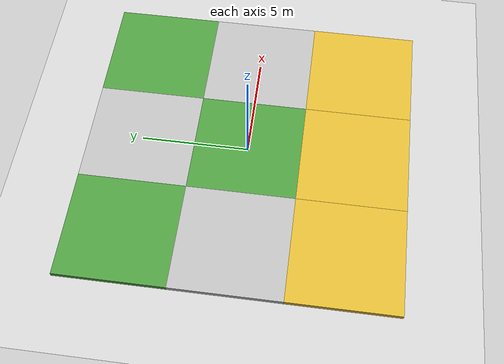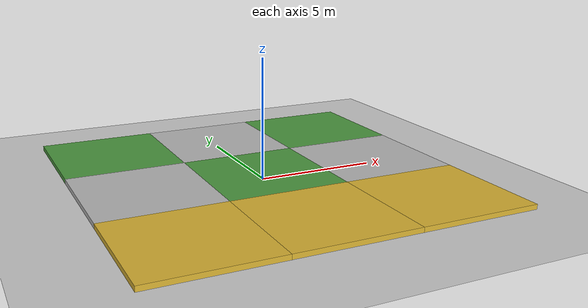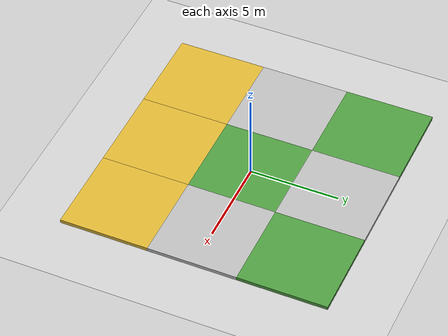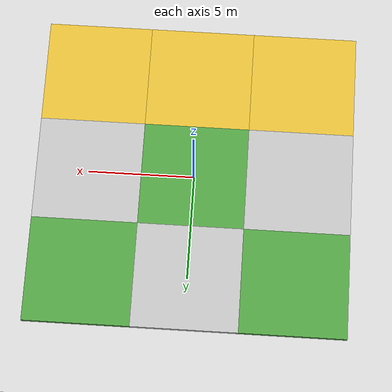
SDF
<sdf version="1.7">
 <world name="default">
  <model name="ground_plane">
   <static>1</static>
   <link name="link">
    <collision name="collision">
     <geometry><plane><normal>0 0 1</normal><size>100 100</size></plane></geometry>
     <surface>
      <contact><collide_bitmask>65535</collide_bitmask></contact>
      <friction><ode><mu>100</mu><mu2>50</mu2></ode></friction>
     </surface>
    </collision>
    <visual name="visual">
     <cast_shadows>0</cast_shadows>
     <geometry><plane><normal>0 0 1</normal><size>100 100</size></plane></geometry>
     <material>
      <script><uri>file://media/materials/scripts/gazebo.material</uri><name>Gazebo/Grey</name></script>
     </material>
    </visual>
   </link>
  </model>
  <light name="sun" type="directional">
   <pose>0 0 10 0 -0 0</pose>
   <diffuse>0.8 0.8 0.8 1</diffuse>
   <specular>0.2 0.2 0.2 1</specular>
   <attenuation>
    <range>1000</range>
    <constant>0.9</constant>
    <linear>0.01</linear>
    <quadratic>0.001</quadratic>
   </attenuation>
   <direction>-0.5 0.1 -0.9</direction>
   <spot><inner_angle>0</inner_angle><outer_angle>0</outer_angle><falloff>0</falloff></spot>
  </light>
  <gravity>0 0 -9.8</gravity>
  <magnetic_field>6e-06 2.3e-05 -4.2e-05</magnetic_field>
  <atmosphere type="adiabatic"/>
  <physics type="ode">
   <max_step_size>0.001</max_step_size>
   <real_time_factor>1</real_time_factor>
   <real_time_update_rate>1000</real_time_update_rate>
  </physics>
  <scene><ambient>0.4 0.4 0.4 1</ambient><background>0.7 0.7 0.7 1</background><shadows>1</shadows></scene>
  <spherical_coordinates>
   <surface_model>EARTH_WGS84</surface_model>
   <latitude_deg>0</latitude_deg>
   <longitude_deg>0</longitude_deg>
   <elevation>0</elevation>
   <heading_deg>0</heading_deg>
  </spherical_coordinates>
  <model name="terrain_patches">
   <joint name="world_to_base_link" type="fixed">
    <pose relative_to="__model__">0 0 0 0 -0 0</pose>
    <parent>world</parent>
    <child>base_link</child>
   </joint>
   <link name="base_link">
    <pose relative_to="world_to_base_link">0 0 0 0 -0 0</pose>
    <inertial>
     <mass>500</mass>
     <inertia><ixx>1043.33</ixx><ixy>0</ixy><ixz>0</ixz><iyy>1043.33</iyy><iyz>0</iyz><izz>2083.33</izz></inertia>
    </inertial>
    <collision name="base_link_collision">
     <pose>0 0 0.2 0 -0 0</pose>
     <geometry><box><size>5 5 0.2</size></box></geometry>
    </collision>
    <visual name="base_link_visual">
     <pose>0 0 0.2 0 -0 0</pose>
     <geometry><box><size>5 5 0.2</size></box></geometry>
     <material>
      <script><name>Gazebo/Grass</name><uri>file://media/materials/scripts/gazebo.material</uri></script>
     </material>
    </visual>
   </link>
   <joint name="block_x1y0_joint" type="prismatic">
    <pose relative_to="base_link">2.5 0 0 0 -0 0</pose>
    <parent>base_link</parent>
    <child>block_x1y0</child>
    <axis>
     <xyz>0 0 1</xyz>
     <limit><lower>-0.0001</lower><upper>0.0001</upper><effort>-1</effort><velocity>-1</velocity></limit>
     <dynamics><spring_reference>0</spring_reference><spring_stiffness>0</spring_stiffness></dynamics>
    </axis>
   </joint>
   <link name="block_x1y0">
    <pose relative_to="block_x1y0_joint">0 0 0 0 -0 0</pose>
    <inertial>
     <mass>500</mass>
     <inertia><ixx>1043.33</ixx><ixy>0</ixy><ixz>0</ixz><iyy>1043.33</iyy><iyz>0</iyz><izz>2083.33</izz></inertia>
    </inertial>
    <collision name="block_x1y0_collision">
     <pose>2.5 0 0.2 0 -0 0</pose>
     <geometry><box><size>5 5 0.2</size></box></geometry>
    </collision>
    <visual name="block_x1y0_visual">
     <pose>2.5 0 0.2 0 -0 0</pose>
     <geometry><box><size>5 5 0.2</size></box></geometry>
     <material>
      <script><name>Gazebo/Tertiary</name><uri>file://media/materials/scripts/gazebo.material</uri></script>
     </material>
    </visual>
   </link>
   <joint name="block_x1y1_joint" type="prismatic">
    <pose relative_to="block_x1y0">0 2.5 0 0 -0 0</pose>
    <parent>block_x1y0</parent>
    <child>block_x1y1</child>
    <axis>
     <xyz>0 0 1</xyz>
     <limit><lower>-0.0001</lower><upper>0.0001</upper><effort>-1</effort><velocity>-1</velocity></limit>
     <dynamics><spring_reference>0</spring_reference><spring_stiffness>0</spring_stiffness></dynamics>
    </axis>
   </joint>
   <link name="block_x1y1">
    <pose relative_to="block_x1y1_joint">0 0 0 0 -0 0</pose>
    <inertial>
     <mass>500</mass>
     <inertia><ixx>1043.33</ixx><ixy>0</ixy><ixz>0</ixz><iyy>1043.33</iyy><iyz>0</iyz><izz>2083.33</izz></inertia>
    </inertial>
    <collision name="block_x1y1_collision">
     <pose>2.5 2.5 0.2 0 -0 0</pose>
     <geometry><box><size>5 5 0.2</size></box></geometry>
    </collision>
    <visual name="block_x1y1_visual">
     <pose>2.5 2.5 0.2 0 -0 0</pose>
     <geometry><box><size>5 5 0.2</size></box></geometry>
     <material>
      <script><name>Gazebo/Grass</name><uri>file://media/materials/scripts/gazebo.material</uri></script>
     </material>
    </visual>
   </link>
   <joint name="block_x0y1_joint" type="prismatic">
    <pose relative_to="block_x1y1">-2.5 0 0 0 -0 0</pose>
    <parent>block_x1y1</parent>
    <child>block_x0y1</child>
    <axis>
     <xyz>0 0 1</xyz>
     <limit><lower>-0.0001</lower><upper>0.0001</upper><effort>-1</effort><velocity>-1</velocity></limit>
     <dynamics><spring_reference>0</spring_reference><spring_stiffness>0</spring_stiffness></dynamics>
    </axis>
   </joint>
   <link name="block_x0y1">
    <pose relative_to="block_x0y1_joint">0 0 0 0 -0 0</pose>
    <inertial>
     <mass>500</mass>
     <inertia><ixx>1043.33</ixx><ixy>0</ixy><ixz>0</ixz><iyy>1043.33</iyy><iyz>0</iyz><izz>2083.33</izz></inertia>
    </inertial>
    <collision name="block_x0y1_collision">
     <pose>0 2.5 0.2 0 -0 0</pose>
     <geometry><box><size>5 5 0.2</size></box></geometry>
    </collision>
    <visual name="block_x0y1_visual">
     <pose>0 2.5 0.2 0 -0 0</pose>
     <geometry><box><size>5 5 0.2</size></box></geometry>
     <material>
      <script><name>Gazebo/Tertiary</name><uri>file://media/materials/scripts/gazebo.material</uri></script>
     </material>
    </visual>
   </link>
   <joint name="block_-x1y1_joint" type="prismatic">
    <pose relative_to="block_x0y1">-2.5 0 0 0 -0 0</pose>
    <parent>block_x0y1</parent>
    <child>block_-x1y1</child>
    <axis>
     <xyz>0 0 1</xyz>
     <limit><lower>-0.0001</lower><upper>0.0001</upper><effort>-1</effort><velocity>-1</velocity></limit>
     <dynamics><spring_reference>0</spring_reference><spring_stiffness>0</spring_stiffness></dynamics>
    </axis>
   </joint>
   <link name="block_-x1y1">
    <pose relative_to="block_-x1y1_joint">0 0 0 0 -0 0</pose>
    <inertial>
     <mass>500</mass>
     <inertia><ixx>1043.33</ixx><ixy>0</ixy><ixz>0</ixz><iyy>1043.33</iyy><iyz>0</iyz><izz>2083.33</izz></inertia>
    </inertial>
    <collision name="block_-x1y1_collision">
     <pose>-2.5 2.5 0.2 0 -0 0</pose>
     <geometry><box><size>5 5 0.2</size></box></geometry>
    </collision>
    <visual name="block_-x1y1_visual">
     <pose>-2.5 2.5 0.2 0 -0 0</pose>
     <geometry><box><size>5 5 0.2</size></box></geometry>
     <material>
      <script><name>Gazebo/Grass</name><uri>file://media/materials/scripts/gazebo.material</uri></script>
     </material>
    </visual>
   </link>
   <joint name="block_-x1y0_joint" type="prismatic">
    <pose relative_to="block_-x1y1">0 -2.5 0 0 -0 0</pose>
    <parent>block_-x1y1</parent>
    <child>block_-x1y0</child>
    <axis>
     <xyz>0 0 1</xyz>
     <limit><lower>-0.0001</lower><upper>0.0001</upper><effort>-1</effort><velocity>-1</velocity></limit>
     <dynamics><spring_reference>0</spring_reference><spring_stiffness>0</spring_stiffness></dynamics>
    </axis>
   </joint>
   <link name="block_-x1y0">
    <pose relative_to="block_-x1y0_joint">0 0 0 0 -0 0</pose>
    <inertial>
     <mass>500</mass>
     <inertia><ixx>1043.33</ixx><ixy>0</ixy><ixz>0</ixz><iyy>1043.33</iyy><iyz>0</iyz><izz>2083.33</izz></inertia>
    </inertial>
    <collision name="block_-x1y0_collision">
     <pose>-2.5 0 0.2 0 -0 0</pose>
     <geometry><box><size>5 5 0.2</size></box></geometry>
    </collision>
    <visual name="block_-x1y0_visual">
     <pose>-2.5 0 0.2 0 -0 0</pose>
     <geometry><box><size>5 5 0.2</size></box></geometry>
     <material>
      <script><name>Gazebo/Tertiary</name><uri>file://media/materials/scripts/gazebo.material</uri></script>
     </material>
    </visual>
   </link>
   <joint name="block_-x1-y1_joint" type="prismatic">
    <pose relative_to="block_-x1y0">0 -2.5 0 0 -0 0</pose>
    <parent>block_-x1y0</parent>
    <child>block_-x1-y1</child>
    <axis>
     <xyz>0 0 1</xyz>
     <limit><lower>-0.0001</lower><upper>0.0001</upper><effort>-1</effort><velocity>-1</velocity></limit>
     <dynamics><spring_reference>0</spring_reference><spring_stiffness>0</spring_stiffness></dynamics>
    </axis>
   </joint>
   <link name="block_-x1-y1">
    <pose relative_to="block_-x1-y1_joint">0 0 0 0 -0 0</pose>
    <inertial>
     <mass>500</mass>
     <inertia><ixx>1043.33</ixx><ixy>0</ixy><ixz>0</ixz><iyy>1043.33</iyy><iyz>0</iyz><izz>2083.33</izz></inertia>
    </inertial>
    <collision name="block_-x1-y1_collision">
     <pose>-2.5 -2.5 0.2 0 -0 0</pose>
     <geometry><box><size>5 5 0.2</size></box></geometry>
    </collision>
    <visual name="block_-x1-y1_visual">
     <pose>-2.5 -2.5 0.2 0 -0 0</pose>
     <geometry><box><size>5 5 0.2</size></box></geometry>
     <material>
      <script><name>Gazebo/Gold</name><uri>file://media/materials/scripts/gazebo.material</uri></script>
     </material>
    </visual>
   </link>
   <joint name="block_x0-y1_joint" type="prismatic">
    <pose relative_to="block_-x1-y1">2.5 0 0 0 -0 0</pose>
    <parent>block_-x1-y1</parent>
    <child>block_x0-y1</child>
    <axis>
     <xyz>0 0 1</xyz>
     <limit><lower>-0.0001</lower><upper>0.0001</upper><effort>-1</effort><velocity>-1</velocity></limit>
     <dynamics><spring_reference>0</spring_reference><spring_stiffness>0</spring_stiffness></dynamics>
    </axis>
   </joint>
   <link name="block_x0-y1">
    <pose relative_to="block_x0-y1_joint">0 0 0 0 -0 0</pose>
    <inertial>
     <mass>500</mass>
     <inertia><ixx>1043.33</ixx><ixy>0</ixy><ixz>0</ixz><iyy>1043.33</iyy><iyz>0</iyz><izz>2083.33</izz></inertia>
    </inertial>
    <collision name="block_x0-y1_collision">
     <pose>0 -2.5 0.2 0 -0 0</pose>
     <geometry><box><size>5 5 0.2</size></box></geometry>
    </collision>
    <visual name="block_x0-y1_visual">
     <pose>0 -2.5 0.2 0 -0 0</pose>
     <geometry><box><size>5 5 0.2</size></box></geometry>
     <material>
      <script><name>Gazebo/Gold</name><uri>file://media/materials/scripts/gazebo.material</uri></script>
     </material>
    </visual>
   </link>
   <joint name="block_x1-y1_joint" type="prismatic">
    <pose relative_to="block_x0-y1">2.5 0 0 0 -0 0</pose>
    <parent>block_x0-y1</parent>
    <child>block_x1-y1</child>
    <axis>
     <xyz>0 0 1</xyz>
     <limit><lower>-0.0001</lower><upper>0.0001</upper><effort>-1</effort><velocity>-1</velocity></limit>
     <dynamics><spring_reference>0</spring_reference><spring_stiffness>0</spring_stiffness></dynamics>
    </axis>
   </joint>
   <link name="block_x1-y1">
    <pose relative_to="block_x1-y1_joint">0 0 0 0 -0 0</pose>
    <inertial>
     <mass>500</mass>
     <inertia><ixx>1043.33</ixx><ixy>0</ixy><ixz>0</ixz><iyy>1043.33</iyy><iyz>0</iyz><izz>2083.33</izz></inertia>
    </inertial>
    <collision name="block_x1-y1_collision">
     <pose>2.5 -2.5 0.2 0 -0 0</pose>
     <geometry><box><size>5 5 0.2</size></box></geometry>
    </collision>
    <visual name="block_x1-y1_visual">
     <pose>2.5 -2.5 0.2 0 -0 0</pose>
     <geometry><box><size>5 5 0.2</size></box></geometry>
     <material>
      <script><name>Gazebo/Gold</name><uri>file://media/materials/scripts/gazebo.material</uri></script>
     </material>
    </visual>
   </link>
   <static>0</static>
   <plugin name="gazebo_ros_control" filename="libgazebo_ros_control.so">
    <robotNamespace>/terrain_patches</robotNamespace>
    <robotSimType>gazebo_ros_control/DefaultRobotHWSim</robotSimType>
   </plugin>
   <pose>-0 0 1e-06 0 -0 0</pose>
  </model>
 </world>
</sdf>
